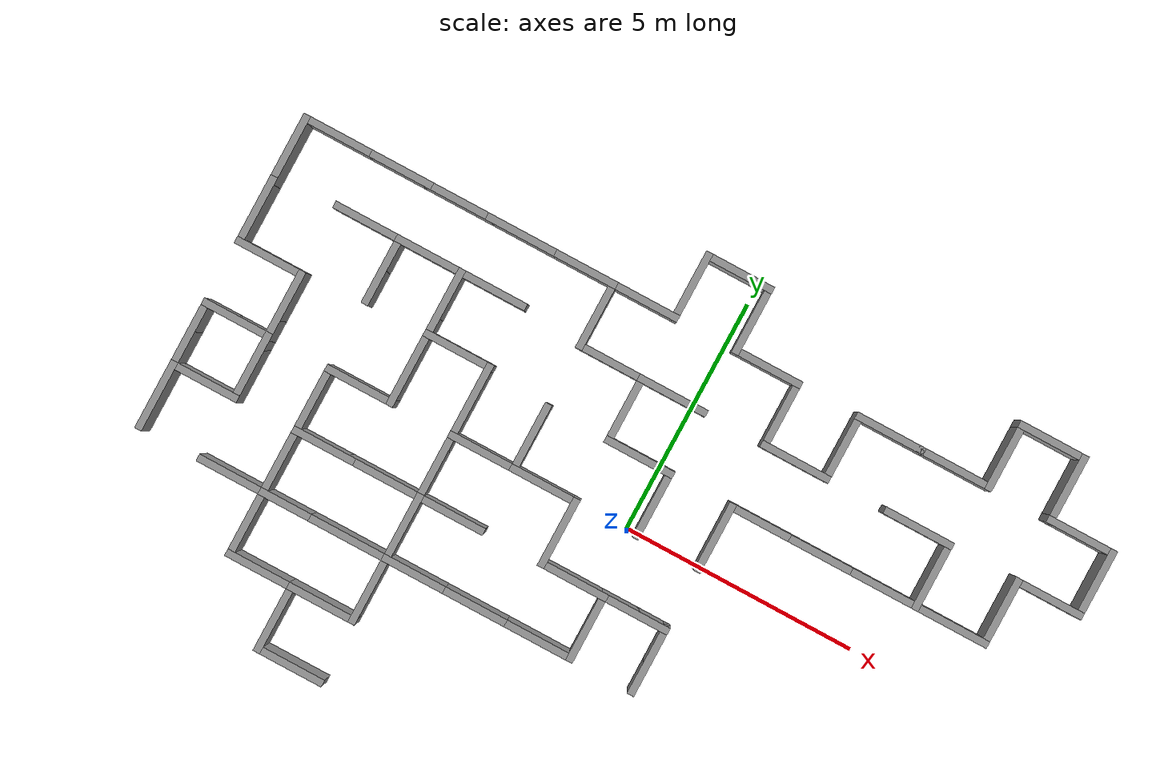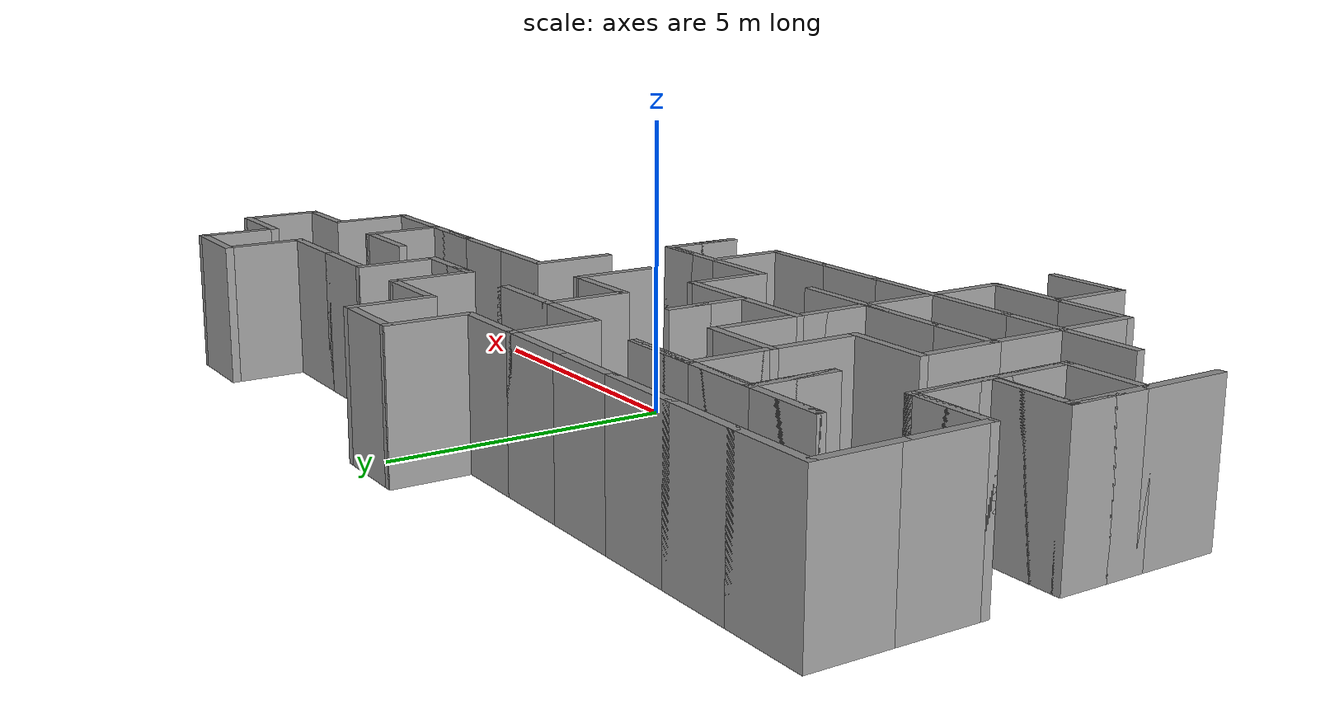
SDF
<sdf version="1.7">
 <model name="my_world">
  <pose>-0.384335 0.024184 0 0 -0 0</pose>
  <link name="Wall_100">
   <collision name="Wall_100_Collision">
    <geometry><box><size>1.5 0.15 2.5</size></box></geometry>
    <pose>0 0 1.25 0 -0 0</pose>
   </collision>
   <visual name="Wall_100_Visual">
    <pose>0 0 1.25 0 -0 0</pose>
    <geometry><box><size>1.5 0.15 2.5</size></box></geometry>
    <material>
     <script><uri>file://media/materials/scripts/gazebo.material</uri><name>Gazebo/Grey</name></script>
     <ambient>1 1 1 1</ambient>
    </material>
    <meta><layer>0</layer></meta>
   </visual>
   <pose>3.975 4.05 0 0 -0 0</pose>
  </link>
  <link name="Wall_102">
   <collision name="Wall_102_Collision">
    <geometry><box><size>1.5 0.15 2.5</size></box></geometry>
    <pose>0 0 1.25 0 -0 0</pose>
   </collision>
   <visual name="Wall_102_Visual">
    <pose>0 0 1.25 0 -0 0</pose>
    <geometry><box><size>1.5 0.15 2.5</size></box></geometry>
    <material>
     <script><uri>file://media/materials/scripts/gazebo.material</uri><name>Gazebo/Grey</name></script>
     <ambient>1 1 1 1</ambient>
    </material>
    <meta><layer>0</layer></meta>
   </visual>
   <pose>5.325 2.7 0 0 -0 0</pose>
  </link>
  <link name="Wall_103">
   <collision name="Wall_103_Collision">
    <geometry><box><size>1.5 0.15 2.5</size></box></geometry>
    <pose>0 0 1.25 0 -0 0</pose>
   </collision>
   <visual name="Wall_103_Visual">
    <pose>0 0 1.25 0 -0 0</pose>
    <geometry><box><size>1.5 0.15 2.5</size></box></geometry>
    <material>
     <script><uri>file://media/materials/scripts/gazebo.material</uri><name>Gazebo/Grey</name></script>
     <ambient>1 1 1 1</ambient>
    </material>
    <meta><layer>0</layer></meta>
   </visual>
   <pose>6 2.025 0 0 -0 -1.5708</pose>
  </link>
  <link name="Wall_104">
   <collision name="Wall_104_Collision">
    <geometry><box><size>1.5 0.15 2.5</size></box></geometry>
    <pose>0 0 1.25 0 -0 0</pose>
   </collision>
   <visual name="Wall_104_Visual">
    <pose>0 0 1.25 0 -0 0</pose>
    <geometry><box><size>1.5 0.15 2.5</size></box></geometry>
    <material>
     <script><uri>file://media/materials/scripts/gazebo.material</uri><name>Gazebo/Grey</name></script>
     <ambient>1 1 1 1</ambient>
    </material>
    <meta><layer>0</layer></meta>
   </visual>
   <pose>5.325 1.35 0 0 -0 3.14159</pose>
  </link>
  <link name="Wall_105">
   <collision name="Wall_105_Collision">
    <geometry><box><size>3 0.15 2.5</size></box></geometry>
    <pose>0 0 1.25 0 -0 0</pose>
   </collision>
   <visual name="Wall_105_Visual">
    <pose>0 0 1.25 0 -0 0</pose>
    <geometry><box><size>3 0.15 2.5</size></box></geometry>
    <material>
     <script><uri>file://media/materials/scripts/gazebo.material</uri><name>Gazebo/Grey</name></script>
     <ambient>1 1 1 1</ambient>
    </material>
    <meta><layer>0</layer></meta>
   </visual>
   <pose>6.075 1.35 0 0 -0 0</pose>
  </link>
  <link name="Wall_106">
   <collision name="Wall_106_Collision">
    <geometry><box><size>1.5 0.15 2.5</size></box></geometry>
    <pose>0 0 1.25 0 -0 0</pose>
   </collision>
   <visual name="Wall_106_Visual">
    <pose>0 0 1.25 0 -0 0</pose>
    <geometry><box><size>1.5 0.15 2.5</size></box></geometry>
    <material>
     <script><uri>file://media/materials/scripts/gazebo.material</uri><name>Gazebo/Grey</name></script>
     <ambient>1 1 1 1</ambient>
    </material>
    <meta><layer>0</layer></meta>
   </visual>
   <pose>7.5 2.025 0 0 -0 1.5708</pose>
  </link>
  <link name="Wall_107">
   <collision name="Wall_107_Collision">
    <geometry><box><size>1.5 0.15 2.5</size></box></geometry>
    <pose>0 0 1.25 0 -0 0</pose>
   </collision>
   <visual name="Wall_107_Visual">
    <pose>0 0 1.25 0 -0 0</pose>
    <geometry><box><size>1.5 0.15 2.5</size></box></geometry>
    <material>
     <script><uri>file://media/materials/scripts/gazebo.material</uri><name>Gazebo/Grey</name></script>
     <ambient>1 1 1 1</ambient>
    </material>
    <meta><layer>0</layer></meta>
   </visual>
   <pose>8.175 2.7 0 0 -0 0</pose>
  </link>
  <link name="Wall_108">
   <collision name="Wall_108_Collision">
    <geometry><box><size>1.5 0.15 2.5</size></box></geometry>
    <pose>0 0 1.25 0 -0 0</pose>
   </collision>
   <visual name="Wall_108_Visual">
    <pose>0 0 1.25 0 -0 0</pose>
    <geometry><box><size>1.5 0.15 2.5</size></box></geometry>
    <material>
     <script><uri>file://media/materials/scripts/gazebo.material</uri><name>Gazebo/Grey</name></script>
     <ambient>1 1 1 1</ambient>
    </material>
    <meta><layer>0</layer></meta>
   </visual>
   <pose>8.85 3.375 0 0 -0 1.5708</pose>
  </link>
  <link name="Wall_109">
   <collision name="Wall_109_Collision">
    <geometry><box><size>1.5 0.15 2.5</size></box></geometry>
    <pose>0 0 1.25 0 -0 0</pose>
   </collision>
   <visual name="Wall_109_Visual">
    <pose>0 0 1.25 0 -0 0</pose>
    <geometry><box><size>1.5 0.15 2.5</size></box></geometry>
    <material>
     <script><uri>file://media/materials/scripts/gazebo.material</uri><name>Gazebo/Grey</name></script>
     <ambient>1 1 1 1</ambient>
    </material>
    <meta><layer>0</layer></meta>
   </visual>
   <pose>8.175 4.05 0 0 -0 3.14159</pose>
  </link>
  <link name="Wall_110">
   <collision name="Wall_110_Collision">
    <geometry><box><size>1.5 0.15 2.5</size></box></geometry>
    <pose>0 0 1.25 0 -0 0</pose>
   </collision>
   <visual name="Wall_110_Visual">
    <pose>0 0 1.25 0 -0 0</pose>
    <geometry><box><size>1.5 0.15 2.5</size></box></geometry>
    <material>
     <script><uri>file://media/materials/scripts/gazebo.material</uri><name>Gazebo/Grey</name></script>
     <ambient>1 1 1 1</ambient>
    </material>
    <meta><layer>0</layer></meta>
   </visual>
   <pose>7.5 4.725 0 0 -0 1.5708</pose>
  </link>
  <link name="Wall_111">
   <collision name="Wall_111_Collision">
    <geometry><box><size>1.5 0.15 2.5</size></box></geometry>
    <pose>0 0 1.25 0 -0 0</pose>
   </collision>
   <visual name="Wall_111_Visual">
    <pose>0 0 1.25 0 -0 0</pose>
    <geometry><box><size>1.5 0.15 2.5</size></box></geometry>
    <material>
     <script><uri>file://media/materials/scripts/gazebo.material</uri><name>Gazebo/Grey</name></script>
     <ambient>1 1 1 1</ambient>
    </material>
    <meta><layer>0</layer></meta>
   </visual>
   <pose>6.825 5.4 0 0 -0 3.14159</pose>
  </link>
  <link name="Wall_112">
   <collision name="Wall_112_Collision">
    <geometry><box><size>1.5 0.15 2.5</size></box></geometry>
    <pose>0 0 1.25 0 -0 0</pose>
   </collision>
   <visual name="Wall_112_Visual">
    <pose>0 0 1.25 0 -0 0</pose>
    <geometry><box><size>1.5 0.15 2.5</size></box></geometry>
    <material>
     <script><uri>file://media/materials/scripts/gazebo.material</uri><name>Gazebo/Grey</name></script>
     <ambient>1 1 1 1</ambient>
    </material>
    <meta><layer>0</layer></meta>
   </visual>
   <pose>6.15 4.725 0 0 -0 -1.5708</pose>
  </link>
  <link name="Wall_114">
   <collision name="Wall_114_Collision">
    <geometry><box><size>1.5 0.15 2.5</size></box></geometry>
    <pose>0 0 1.25 0 -0 0</pose>
   </collision>
   <visual name="Wall_114_Visual">
    <pose>0 0 1.25 0 -0 0</pose>
    <geometry><box><size>1.5 0.15 2.5</size></box></geometry>
    <material>
     <script><uri>file://media/materials/scripts/gazebo.material</uri><name>Gazebo/Grey</name></script>
     <ambient>1 1 1 1</ambient>
    </material>
    <meta><layer>0</layer></meta>
   </visual>
   <pose>-0.75 -0.675 0 0 -0 -1.5708</pose>
  </link>
  <link name="Wall_115">
   <collision name="Wall_115_Collision">
    <geometry><box><size>1.5 0.15 2.5</size></box></geometry>
    <pose>0 0 1.25 0 -0 0</pose>
   </collision>
   <visual name="Wall_115_Visual">
    <pose>0 0 1.25 0 -0 0</pose>
    <geometry><box><size>1.5 0.15 2.5</size></box></geometry>
    <material>
     <script><uri>file://media/materials/scripts/gazebo.material</uri><name>Gazebo/Grey</name></script>
     <ambient>1 1 1 1</ambient>
    </material>
    <meta><layer>0</layer></meta>
   </visual>
   <pose>-0.075 -1.35 0 0 -0 0</pose>
  </link>
  <link name="Wall_116">
   <collision name="Wall_116_Collision">
    <geometry><box><size>1.5 0.15 2.5</size></box></geometry>
    <pose>0 0 1.25 0 -0 0</pose>
   </collision>
   <visual name="Wall_116_Visual">
    <pose>0 0 1.25 0 -0 0</pose>
    <geometry><box><size>1.5 0.15 2.5</size></box></geometry>
    <material>
     <script><uri>file://media/materials/scripts/gazebo.material</uri><name>Gazebo/Grey</name></script>
     <ambient>1 1 1 1</ambient>
    </material>
    <meta><layer>0</layer></meta>
   </visual>
   <pose>1.275 -1.35 0 0 -0 0</pose>
  </link>
  <link name="Wall_117">
   <collision name="Wall_117_Collision">
    <geometry><box><size>1.5 0.15 2.5</size></box></geometry>
    <pose>0 0 1.25 0 -0 0</pose>
   </collision>
   <visual name="Wall_117_Visual">
    <pose>0 0 1.25 0 -0 0</pose>
    <geometry><box><size>1.5 0.15 2.5</size></box></geometry>
    <material>
     <script><uri>file://media/materials/scripts/gazebo.material</uri><name>Gazebo/Grey</name></script>
     <ambient>1 1 1 1</ambient>
    </material>
    <meta><layer>0</layer></meta>
   </visual>
   <pose>1.95 -2.025 0 0 -0 -1.5708</pose>
  </link>
  <link name="Wall_118">
   <collision name="Wall_118_Collision">
    <geometry><box><size>1.5 0.15 2.5</size></box></geometry>
    <pose>0 0 1.25 0 -0 0</pose>
   </collision>
   <visual name="Wall_118_Visual">
    <pose>0 0 1.25 0 -0 0</pose>
    <geometry><box><size>1.5 0.15 2.5</size></box></geometry>
    <material>
     <script><uri>file://media/materials/scripts/gazebo.material</uri><name>Gazebo/Grey</name></script>
     <ambient>1 1 1 1</ambient>
    </material>
    <meta><layer>0</layer></meta>
   </visual>
   <pose>1.95 -2.025 0 0 -0 1.5708</pose>
  </link>
  <link name="Wall_119">
   <collision name="Wall_119_Collision">
    <geometry><box><size>1.5 0.15 2.5</size></box></geometry>
    <pose>0 0 1.25 0 -0 0</pose>
   </collision>
   <visual name="Wall_119_Visual">
    <pose>0 0 1.25 0 -0 0</pose>
    <geometry><box><size>1.5 0.15 2.5</size></box></geometry>
    <material>
     <script><uri>file://media/materials/scripts/gazebo.material</uri><name>Gazebo/Grey</name></script>
     <ambient>1 1 1 1</ambient>
    </material>
    <meta><layer>0</layer></meta>
   </visual>
   <pose>1.275 -1.35 0 0 -0 3.14159</pose>
  </link>
  <link name="Wall_120">
   <collision name="Wall_120_Collision">
    <geometry><box><size>1.5 0.15 2.5</size></box></geometry>
    <pose>0 0 1.25 0 -0 0</pose>
   </collision>
   <visual name="Wall_120_Visual">
    <pose>0 0 1.25 0 -0 0</pose>
    <geometry><box><size>1.5 0.15 2.5</size></box></geometry>
    <material>
     <script><uri>file://media/materials/scripts/gazebo.material</uri><name>Gazebo/Grey</name></script>
     <ambient>1 1 1 1</ambient>
    </material>
    <meta><layer>0</layer></meta>
   </visual>
   <pose>0.6 -2.025 0 0 -0 -1.5708</pose>
  </link>
  <link name="Wall_121">
   <collision name="Wall_121_Collision">
    <geometry><box><size>1.5 0.15 2.5</size></box></geometry>
    <pose>0 0 1.25 0 -0 0</pose>
   </collision>
   <visual name="Wall_121_Visual">
    <pose>0 0 1.25 0 -0 0</pose>
    <geometry><box><size>1.5 0.15 2.5</size></box></geometry>
    <material>
     <script><uri>file://media/materials/scripts/gazebo.material</uri><name>Gazebo/Grey</name></script>
     <ambient>1 1 1 1</ambient>
    </material>
    <meta><layer>0</layer></meta>
   </visual>
   <pose>-0.075 -2.7 0 0 -0 3.14159</pose>
  </link>
  <link name="Wall_122">
   <collision name="Wall_122_Collision">
    <geometry><box><size>1.5 0.15 2.5</size></box></geometry>
    <pose>0 0 1.25 0 -0 0</pose>
   </collision>
   <visual name="Wall_122_Visual">
    <pose>0 0 1.25 0 -0 0</pose>
    <geometry><box><size>1.5 0.15 2.5</size></box></geometry>
    <material>
     <script><uri>file://media/materials/scripts/gazebo.material</uri><name>Gazebo/Grey</name></script>
     <ambient>1 1 1 1</ambient>
    </material>
    <meta><layer>0</layer></meta>
   </visual>
   <pose>-1.425 -2.7 0 0 -0 3.14159</pose>
  </link>
  <link name="Wall_123">
   <collision name="Wall_123_Collision">
    <geometry><box><size>1.5 0.15 2.5</size></box></geometry>
    <pose>0 0 1.25 0 -0 0</pose>
   </collision>
   <visual name="Wall_123_Visual">
    <pose>0 0 1.25 0 -0 0</pose>
    <geometry><box><size>1.5 0.15 2.5</size></box></geometry>
    <material>
     <script><uri>file://media/materials/scripts/gazebo.material</uri><name>Gazebo/Grey</name></script>
     <ambient>1 1 1 1</ambient>
    </material>
    <meta><layer>0</layer></meta>
   </visual>
   <pose>-2.775 -2.7 0 0 -0 3.14159</pose>
  </link>
  <link name="Wall_124">
   <collision name="Wall_124_Collision">
    <geometry><box><size>1.75 0.15 2.5</size></box></geometry>
    <pose>0 0 1.25 0 -0 0</pose>
   </collision>
   <visual name="Wall_124_Visual">
    <pose>0 0 1.25 0 -0 0</pose>
    <geometry><box><size>1.75 0.15 2.5</size></box></geometry>
    <material>
     <script><uri>file://media/materials/scripts/gazebo.material</uri><name>Gazebo/Grey</name></script>
     <ambient>1 1 1 1</ambient>
    </material>
    <meta><layer>0</layer></meta>
   </visual>
   <pose>-4.25 -2.7 0 0 -0 3.14159</pose>
  </link>
  <link name="Wall_125">
   <collision name="Wall_125_Collision">
    <geometry><box><size>1.25 0.15 2.5</size></box></geometry>
    <pose>0 0 1.25 0 -0 0</pose>
   </collision>
   <visual name="Wall_125_Visual">
    <pose>0 0 1.25 0 -0 0</pose>
    <geometry><box><size>1.25 0.15 2.5</size></box></geometry>
    <material>
     <script><uri>file://media/materials/scripts/gazebo.material</uri><name>Gazebo/Grey</name></script>
     <ambient>1 1 1 1</ambient>
    </material>
    <meta><layer>0</layer></meta>
   </visual>
   <pose>-5.6 -2.7 0 0 -0 3.14159</pose>
  </link>
  <link name="Wall_126">
   <collision name="Wall_126_Collision">
    <geometry><box><size>1.5 0.15 2.5</size></box></geometry>
    <pose>0 0 1.25 0 -0 0</pose>
   </collision>
   <visual name="Wall_126_Visual">
    <pose>0 0 1.25 0 -0 0</pose>
    <geometry><box><size>1.5 0.15 2.5</size></box></geometry>
    <material>
     <script><uri>file://media/materials/scripts/gazebo.material</uri><name>Gazebo/Grey</name></script>
     <ambient>1 1 1 1</ambient>
    </material>
    <meta><layer>0</layer></meta>
   </visual>
   <pose>-6.825 -2.7 0 0 -0 3.14159</pose>
  </link>
  <link name="Wall_130">
   <collision name="Wall_130_Collision">
    <geometry><box><size>1.5 0.15 2.5</size></box></geometry>
    <pose>0 0 1.25 0 -0 0</pose>
   </collision>
   <visual name="Wall_130_Visual">
    <pose>0 0 1.25 0 -0 0</pose>
    <geometry><box><size>1.5 0.15 2.5</size></box></geometry>
    <material>
     <script><uri>file://media/materials/scripts/gazebo.material</uri><name>Gazebo/Grey</name></script>
     <ambient>1 1 1 1</ambient>
    </material>
    <meta><layer>0</layer></meta>
   </visual>
   <pose>-3.45 -2.025 0 0 -0 -1.5708</pose>
  </link>
  <link name="Wall_131">
   <collision name="Wall_131_Collision">
    <geometry><box><size>1.5 0.15 2.5</size></box></geometry>
    <pose>0 0 1.25 0 -0 0</pose>
   </collision>
   <visual name="Wall_131_Visual">
    <pose>0 0 1.25 0 -0 0</pose>
    <geometry><box><size>1.5 0.15 2.5</size></box></geometry>
    <material>
     <script><uri>file://media/materials/scripts/gazebo.material</uri><name>Gazebo/Grey</name></script>
     <ambient>1 1 1 1</ambient>
    </material>
    <meta><layer>0</layer></meta>
   </visual>
   <pose>-3.45 -3.375 0 0 -0 -1.5708</pose>
  </link>
  <link name="Wall_132">
   <collision name="Wall_132_Collision">
    <geometry><box><size>1.5 0.15 2.5</size></box></geometry>
    <pose>0 0 1.25 0 -0 0</pose>
   </collision>
   <visual name="Wall_132_Visual">
    <pose>0 0 1.25 0 -0 0</pose>
    <geometry><box><size>1.5 0.15 2.5</size></box></geometry>
    <material>
     <script><uri>file://media/materials/scripts/gazebo.material</uri><name>Gazebo/Grey</name></script>
     <ambient>1 1 1 1</ambient>
    </material>
    <meta><layer>0</layer></meta>
   </visual>
   <pose>-4.125 -4.05 0 0 -0 3.14159</pose>
  </link>
  <link name="Wall_133">
   <collision name="Wall_133_Collision">
    <geometry><box><size>1.5 0.15 2.5</size></box></geometry>
    <pose>0 0 1.25 0 -0 0</pose>
   </collision>
   <visual name="Wall_133_Visual">
    <pose>0 0 1.25 0 -0 0</pose>
    <geometry><box><size>1.5 0.15 2.5</size></box></geometry>
    <material>
     <script><uri>file://media/materials/scripts/gazebo.material</uri><name>Gazebo/Grey</name></script>
     <ambient>1 1 1 1</ambient>
    </material>
    <meta><layer>0</layer></meta>
   </visual>
   <pose>-4.8 -4.725 0 0 -0 -1.5708</pose>
  </link>
  <link name="Wall_134">
   <collision name="Wall_134_Collision">
    <geometry><box><size>1.5 0.15 2.5</size></box></geometry>
    <pose>0 0 1.25 0 -0 0</pose>
   </collision>
   <visual name="Wall_134_Visual">
    <pose>0 0 1.25 0 -0 0</pose>
    <geometry><box><size>1.5 0.15 2.5</size></box></geometry>
    <material>
     <script><uri>file://media/materials/scripts/gazebo.material</uri><name>Gazebo/Grey</name></script>
     <ambient>1 1 1 1</ambient>
    </material>
    <meta><layer>0</layer></meta>
   </visual>
   <pose>-4.125 -5.4 0 0 -0 0</pose>
  </link>
  <link name="Wall_140">
   <collision name="Wall_140_Collision">
    <geometry><box><size>1.5 0.15 2.5</size></box></geometry>
    <pose>0 0 1.25 0 -0 0</pose>
   </collision>
   <visual name="Wall_140_Visual">
    <pose>0 0 1.25 0 -0 0</pose>
    <geometry><box><size>1.5 0.15 2.5</size></box></geometry>
    <material>
     <script><uri>file://media/materials/scripts/gazebo.material</uri><name>Gazebo/Grey</name></script>
     <ambient>1 1 1 1</ambient>
    </material>
    <meta><layer>0</layer></meta>
   </visual>
   <pose>-5.475 -4.05 0 0 -0 3.14159</pose>
  </link>
  <link name="Wall_141">
   <collision name="Wall_141_Collision">
    <geometry><box><size>1.5 0.15 2.5</size></box></geometry>
    <pose>0 0 1.25 0 -0 0</pose>
   </collision>
   <visual name="Wall_141_Visual">
    <pose>0 0 1.25 0 -0 0</pose>
    <geometry><box><size>1.5 0.15 2.5</size></box></geometry>
    <material>
     <script><uri>file://media/materials/scripts/gazebo.material</uri><name>Gazebo/Grey</name></script>
     <ambient>1 1 1 1</ambient>
    </material>
    <meta><layer>0</layer></meta>
   </visual>
   <pose>-6.15 -3.375 0 0 -0 1.5708</pose>
  </link>
  <link name="Wall_142">
   <collision name="Wall_142_Collision">
    <geometry><box><size>1.5 0.15 2.5</size></box></geometry>
    <pose>0 0 1.25 0 -0 0</pose>
   </collision>
   <visual name="Wall_142_Visual">
    <pose>0 0 1.25 0 -0 0</pose>
    <geometry><box><size>1.5 0.15 2.5</size></box></geometry>
    <material>
     <script><uri>file://media/materials/scripts/gazebo.material</uri><name>Gazebo/Grey</name></script>
     <ambient>1 1 1 1</ambient>
    </material>
    <meta><layer>0</layer></meta>
   </visual>
   <pose>-6.825 -2.7 0 0 -0 3.14159</pose>
  </link>
  <link name="Wall_144">
   <collision name="Wall_144_Collision">
    <geometry><box><size>1.5 0.15 2.5</size></box></geometry>
    <pose>0 0 1.25 0 -0 0</pose>
   </collision>
   <visual name="Wall_144_Visual">
    <pose>0 0 1.25 0 -0 0</pose>
    <geometry><box><size>1.5 0.15 2.5</size></box></geometry>
    <material>
     <script><uri>file://media/materials/scripts/gazebo.material</uri><name>Gazebo/Grey</name></script>
     <ambient>1 1 1 1</ambient>
    </material>
    <meta><layer>0</layer></meta>
   </visual>
   <pose>-8.85 -2.025 0 0 -0 1.5708</pose>
  </link>
  <link name="Wall_145">
   <collision name="Wall_145_Collision">
    <geometry><box><size>1.5 0.15 2.5</size></box></geometry>
    <pose>0 0 1.25 0 -0 0</pose>
   </collision>
   <visual name="Wall_145_Visual">
    <pose>0 0 1.25 0 -0 0</pose>
    <geometry><box><size>1.5 0.15 2.5</size></box></geometry>
    <material>
     <script><uri>file://media/materials/scripts/gazebo.material</uri><name>Gazebo/Grey</name></script>
     <ambient>1 1 1 1</ambient>
    </material>
    <meta><layer>0</layer></meta>
   </visual>
   <pose>-8.175 -1.35 0 0 -0 0</pose>
  </link>
  <link name="Wall_147">
   <collision name="Wall_147_Collision">
    <geometry><box><size>1.35 0.15 2.5</size></box></geometry>
    <pose>0 0 1.25 0 -0 0</pose>
   </collision>
   <visual name="Wall_147_Visual">
    <pose>0 0 1.25 0 -0 0</pose>
    <geometry><box><size>1.35 0.15 2.5</size></box></geometry>
    <material>
     <script><uri>file://media/materials/scripts/gazebo.material</uri><name>Gazebo/Grey</name></script>
     <ambient>1 1 1 1</ambient>
    </material>
    <meta><layer>0</layer></meta>
   </visual>
   <pose>-5.55 -1.35 0 0 -0 3.14159</pose>
  </link>
  <link name="Wall_148">
   <collision name="Wall_148_Collision">
    <geometry><box><size>1.5 0.15 2.5</size></box></geometry>
    <pose>0 0 1.25 0 -0 0</pose>
   </collision>
   <visual name="Wall_148_Visual">
    <pose>0 0 1.25 0 -0 0</pose>
    <geometry><box><size>1.5 0.15 2.5</size></box></geometry>
    <material>
     <script><uri>file://media/materials/scripts/gazebo.material</uri><name>Gazebo/Grey</name></script>
     <ambient>1 1 1 1</ambient>
    </material>
    <meta><layer>0</layer></meta>
   </visual>
   <pose>-6.15 -2.025 0 0 -0 -1.5708</pose>
  </link>
  <link name="Wall_151">
   <collision name="Wall_151_Collision">
    <geometry><box><size>1.5 0.15 2.5</size></box></geometry>
    <pose>0 0 1.25 0 -0 0</pose>
   </collision>
   <visual name="Wall_151_Visual">
    <pose>0 0 1.25 0 -0 0</pose>
    <geometry><box><size>1.5 0.15 2.5</size></box></geometry>
    <material>
     <script><uri>file://media/materials/scripts/gazebo.material</uri><name>Gazebo/Grey</name></script>
     <ambient>1 1 1 1</ambient>
    </material>
    <meta><layer>0</layer></meta>
   </visual>
   <pose>-4.125 4.05 0 0 -0 0</pose>
  </link>
  <link name="Wall_153">
   <collision name="Wall_153_Collision">
    <geometry><box><size>1.5 0.15 2.5</size></box></geometry>
    <pose>0 0 1.25 0 -0 0</pose>
   </collision>
   <visual name="Wall_153_Visual">
    <pose>0 0 1.25 0 -0 0</pose>
    <geometry><box><size>1.5 0.15 2.5</size></box></geometry>
    <material>
     <script><uri>file://media/materials/scripts/gazebo.material</uri><name>Gazebo/Grey</name></script>
     <ambient>1 1 1 1</ambient>
    </material>
    <meta><layer>0</layer></meta>
   </visual>
   <pose>-0.075 2.7 0 0 -0 0</pose>
  </link>
  <link name="Wall_155">
   <collision name="Wall_155_Collision">
    <geometry><box><size>1.5 0.15 2.5</size></box></geometry>
    <pose>0 0 1.25 0 -0 0</pose>
   </collision>
   <visual name="Wall_155_Visual">
    <pose>0 0 1.25 0 -0 0</pose>
    <geometry><box><size>1.5 0.15 2.5</size></box></geometry>
    <material>
     <script><uri>file://media/materials/scripts/gazebo.material</uri><name>Gazebo/Grey</name></script>
     <ambient>1 1 1 1</ambient>
    </material>
    <meta><layer>0</layer></meta>
   </visual>
   <pose>-0.075 1.35 0 0 -0 0</pose>
  </link>
  <link name="Wall_156">
   <collision name="Wall_156_Collision">
    <geometry><box><size>1.5 0.15 2.5</size></box></geometry>
    <pose>0 0 1.25 0 -0 0</pose>
   </collision>
   <visual name="Wall_156_Visual">
    <pose>0 0 1.25 0 -0 0</pose>
    <geometry><box><size>1.5 0.15 2.5</size></box></geometry>
    <material>
     <script><uri>file://media/materials/scripts/gazebo.material</uri><name>Gazebo/Grey</name></script>
     <ambient>1 1 1 1</ambient>
    </material>
    <meta><layer>0</layer></meta>
   </visual>
   <pose>0.6 0.675 0 0 -0 -1.5708</pose>
  </link>
  <link name="Wall_158">
   <collision name="Wall_158_Collision">
    <geometry><box><size>1.5 0.15 2.5</size></box></geometry>
    <pose>0 0 1.25 0 -0 0</pose>
   </collision>
   <visual name="Wall_158_Visual">
    <pose>0 0 1.25 0 -0 0</pose>
    <geometry><box><size>1.5 0.15 2.5</size></box></geometry>
    <material>
     <script><uri>file://media/materials/scripts/gazebo.material</uri><name>Gazebo/Grey</name></script>
     <ambient>1 1 1 1</ambient>
    </material>
    <meta><layer>0</layer></meta>
   </visual>
   <pose>3.975 1.35 0 0 -0 0</pose>
  </link>
  <link name="Wall_160">
   <collision name="Wall_160_Collision">
    <geometry><box><size>0.15 0.15 2.5</size></box></geometry>
    <pose>0 0 1.25 0 -0 0</pose>
   </collision>
   <visual name="Wall_160_Visual">
    <pose>0 0 1.25 0 -0 0</pose>
    <geometry><box><size>0.15 0.15 2.5</size></box></geometry>
    <material>
     <script><uri>file://media/materials/scripts/gazebo.material</uri><name>Gazebo/Grey</name></script>
     <ambient>1 1 1 1</ambient>
    </material>
    <meta><layer>0</layer></meta>
   </visual>
   <pose>4.65 4.05 0 0 -0 0</pose>
  </link>
  <link name="Wall_161">
   <collision name="Wall_161_Collision">
    <geometry><box><size>1.65 0.15 2.5</size></box></geometry>
    <pose>0 0 1.25 0 -0 0</pose>
   </collision>
   <visual name="Wall_161_Visual">
    <pose>0 0 1.25 0 -0 0</pose>
    <geometry><box><size>1.65 0.15 2.5</size></box></geometry>
    <material>
     <script><uri>file://media/materials/scripts/gazebo.material</uri><name>Gazebo/Grey</name></script>
     <ambient>1 1 1 1</ambient>
    </material>
    <meta><layer>0</layer></meta>
   </visual>
   <pose>5.4 4.05 0 0 -0 0</pose>
  </link>
  <link name="Wall_39">
   <collision name="Wall_39_Collision">
    <geometry><box><size>1.5 0.15 2.5</size></box></geometry>
    <pose>0 0 1.25 0 -0 0</pose>
   </collision>
   <visual name="Wall_39_Visual">
    <pose>0 0 1.25 0 -0 0</pose>
    <geometry><box><size>1.5 0.15 2.5</size></box></geometry>
    <material>
     <script><uri>file://media/materials/scripts/gazebo.material</uri><name>Gazebo/Grey</name></script>
     <ambient>1 1 1 1</ambient>
    </material>
    <meta><layer>0</layer></meta>
   </visual>
   <pose>-2.775 4.05 0 0 -0 0</pose>
  </link>
  <link name="Wall_40">
   <collision name="Wall_40_Collision">
    <geometry><box><size>1.5 0.15 2.5</size></box></geometry>
    <pose>0 0 1.25 0 -0 0</pose>
   </collision>
   <visual name="Wall_40_Visual">
    <pose>0 0 1.25 0 -0 0</pose>
    <geometry><box><size>1.5 0.15 2.5</size></box></geometry>
    <material>
     <script><uri>file://media/materials/scripts/gazebo.material</uri><name>Gazebo/Grey</name></script>
     <ambient>1 1 1 1</ambient>
    </material>
    <meta><layer>0</layer></meta>
   </visual>
   <pose>-2.1 3.375 0 0 -0 -1.5708</pose>
  </link>
  <link name="Wall_41">
   <collision name="Wall_41_Collision">
    <geometry><box><size>1.5 0.15 2.5</size></box></geometry>
    <pose>0 0 1.25 0 -0 0</pose>
   </collision>
   <visual name="Wall_41_Visual">
    <pose>0 0 1.25 0 -0 0</pose>
    <geometry><box><size>1.5 0.15 2.5</size></box></geometry>
    <material>
     <script><uri>file://media/materials/scripts/gazebo.material</uri><name>Gazebo/Grey</name></script>
     <ambient>1 1 1 1</ambient>
    </material>
    <meta><layer>0</layer></meta>
   </visual>
   <pose>-1.425 2.7 0 0 -0 0</pose>
  </link>
  <link name="Wall_43">
   <collision name="Wall_43_Collision">
    <geometry><box><size>1.5 0.15 2.5</size></box></geometry>
    <pose>0 0 1.25 0 -0 0</pose>
   </collision>
   <visual name="Wall_43_Visual">
    <pose>0 0 1.25 0 -0 0</pose>
    <geometry><box><size>1.5 0.15 2.5</size></box></geometry>
    <material>
     <script><uri>file://media/materials/scripts/gazebo.material</uri><name>Gazebo/Grey</name></script>
     <ambient>1 1 1 1</ambient>
    </material>
    <meta><layer>0</layer></meta>
   </visual>
   <pose>-0.75 2.025 0 0 -0 -1.5708</pose>
  </link>
  <link name="Wall_47">
   <collision name="Wall_47_Collision">
    <geometry><box><size>1.5 0.15 2.5</size></box></geometry>
    <pose>0 0 1.25 0 -0 0</pose>
   </collision>
   <visual name="Wall_47_Visual">
    <pose>0 0 1.25 0 -0 0</pose>
    <geometry><box><size>1.5 0.15 2.5</size></box></geometry>
    <material>
     <script><uri>file://media/materials/scripts/gazebo.material</uri><name>Gazebo/Grey</name></script>
     <ambient>1 1 1 1</ambient>
    </material>
    <meta><layer>0</layer></meta>
   </visual>
   <pose>1.95 0.675 0 0 -0 1.5708</pose>
  </link>
  <link name="Wall_48">
   <collision name="Wall_48_Collision">
    <geometry><box><size>1.5 0.15 2.5</size></box></geometry>
    <pose>0 0 1.25 0 -0 0</pose>
   </collision>
   <visual name="Wall_48_Visual">
    <pose>0 0 1.25 0 -0 0</pose>
    <geometry><box><size>1.5 0.15 2.5</size></box></geometry>
    <material>
     <script><uri>file://media/materials/scripts/gazebo.material</uri><name>Gazebo/Grey</name></script>
     <ambient>1 1 1 1</ambient>
    </material>
    <meta><layer>0</layer></meta>
   </visual>
   <pose>2.625 1.35 0 0 -0 0</pose>
  </link>
  <link name="Wall_50">
   <collision name="Wall_50_Collision">
    <geometry><box><size>1.5 0.15 2.5</size></box></geometry>
    <pose>0 0 1.25 0 -0 0</pose>
   </collision>
   <visual name="Wall_50_Visual">
    <pose>0 0 1.25 0 -0 0</pose>
    <geometry><box><size>1.5 0.15 2.5</size></box></geometry>
    <material>
     <script><uri>file://media/materials/scripts/gazebo.material</uri><name>Gazebo/Grey</name></script>
     <ambient>1 1 1 1</ambient>
    </material>
    <meta><layer>0</layer></meta>
   </visual>
   <pose>2.625 2.7 0 0 -0 3.14159</pose>
  </link>
  <link name="Wall_54">
   <collision name="Wall_54_Collision">
    <geometry><box><size>1.5 0.15 2.5</size></box></geometry>
    <pose>0 0 1.25 0 -0 0</pose>
   </collision>
   <visual name="Wall_54_Visual">
    <pose>0 0 1.25 0 -0 0</pose>
    <geometry><box><size>1.5 0.15 2.5</size></box></geometry>
    <material>
     <script><uri>file://media/materials/scripts/gazebo.material</uri><name>Gazebo/Grey</name></script>
     <ambient>1 1 1 1</ambient>
    </material>
    <meta><layer>0</layer></meta>
   </visual>
   <pose>-1.425 -0 0 0 -0 3.14159</pose>
  </link>
  <link name="Wall_55">
   <collision name="Wall_55_Collision">
    <geometry><box><size>1.5 0.15 2.5</size></box></geometry>
    <pose>0 0 1.25 0 -0 0</pose>
   </collision>
   <visual name="Wall_55_Visual">
    <pose>0 0 1.25 0 -0 0</pose>
    <geometry><box><size>1.5 0.15 2.5</size></box></geometry>
    <material>
     <script><uri>file://media/materials/scripts/gazebo.material</uri><name>Gazebo/Grey</name></script>
     <ambient>1 1 1 1</ambient>
    </material>
    <meta><layer>0</layer></meta>
   </visual>
   <pose>-2.1 0.675 0 0 -0 1.5708</pose>
  </link>
  <link name="Wall_56">
   <collision name="Wall_56_Collision">
    <geometry><box><size>1.5 0.15 2.5</size></box></geometry>
    <pose>0 0 1.25 0 -0 0</pose>
   </collision>
   <visual name="Wall_56_Visual">
    <pose>0 0 1.25 0 -0 0</pose>
    <geometry><box><size>1.5 0.15 2.5</size></box></geometry>
    <material>
     <script><uri>file://media/materials/scripts/gazebo.material</uri><name>Gazebo/Grey</name></script>
     <ambient>1 1 1 1</ambient>
    </material>
    <meta><layer>0</layer></meta>
   </visual>
   <pose>-2.1 0.675 0 0 -0 -1.5708</pose>
  </link>
  <link name="Wall_57">
   <collision name="Wall_57_Collision">
    <geometry><box><size>1.5 0.15 2.5</size></box></geometry>
    <pose>0 0 1.25 0 -0 0</pose>
   </collision>
   <visual name="Wall_57_Visual">
    <pose>0 0 1.25 0 -0 0</pose>
    <geometry><box><size>1.5 0.15 2.5</size></box></geometry>
    <material>
     <script><uri>file://media/materials/scripts/gazebo.material</uri><name>Gazebo/Grey</name></script>
     <ambient>1 1 1 1</ambient>
    </material>
    <meta><layer>0</layer></meta>
   </visual>
   <pose>-2.775 -0 0 0 -0 3.14159</pose>
  </link>
  <link name="Wall_58">
   <collision name="Wall_58_Collision">
    <geometry><box><size>1.5 0.15 2.5</size></box></geometry>
    <pose>0 0 1.25 0 -0 0</pose>
   </collision>
   <visual name="Wall_58_Visual">
    <pose>0 0 1.25 0 -0 0</pose>
    <geometry><box><size>1.5 0.15 2.5</size></box></geometry>
    <material>
     <script><uri>file://media/materials/scripts/gazebo.material</uri><name>Gazebo/Grey</name></script>
     <ambient>1 1 1 1</ambient>
    </material>
    <meta><layer>0</layer></meta>
   </visual>
   <pose>-3.45 -0.675 0 0 -0 -1.5708</pose>
  </link>
  <link name="Wall_59">
   <collision name="Wall_59_Collision">
    <geometry><box><size>1.5 0.15 2.5</size></box></geometry>
    <pose>0 0 1.25 0 -0 0</pose>
   </collision>
   <visual name="Wall_59_Visual">
    <pose>0 0 1.25 0 -0 0</pose>
    <geometry><box><size>1.5 0.15 2.5</size></box></geometry>
    <material>
     <script><uri>file://media/materials/scripts/gazebo.material</uri><name>Gazebo/Grey</name></script>
     <ambient>1 1 1 1</ambient>
    </material>
    <meta><layer>0</layer></meta>
   </visual>
   <pose>-2.775 -1.35 0 0 -0 0</pose>
  </link>
  <link name="Wall_60">
   <collision name="Wall_60_Collision">
    <geometry><box><size>3 0.15 2.5</size></box></geometry>
    <pose>0 0 1.25 0 -0 0</pose>
   </collision>
   <visual name="Wall_60_Visual">
    <pose>0 0 1.25 0 -0 0</pose>
    <geometry><box><size>3 0.15 2.5</size></box></geometry>
    <material>
     <script><uri>file://media/materials/scripts/gazebo.material</uri><name>Gazebo/Grey</name></script>
     <ambient>1 1 1 1</ambient>
    </material>
    <meta><layer>0</layer></meta>
   </visual>
   <pose>-3.525 -1.35 0 0 -0 3.14159</pose>
  </link>
  <link name="Wall_61">
   <collision name="Wall_61_Collision">
    <geometry><box><size>1.65 0.15 2.5</size></box></geometry>
    <pose>0 0 1.25 0 -0 0</pose>
   </collision>
   <visual name="Wall_61_Visual">
    <pose>0 0 1.25 0 -0 0</pose>
    <geometry><box><size>1.65 0.15 2.5</size></box></geometry>
    <material>
     <script><uri>file://media/materials/scripts/gazebo.material</uri><name>Gazebo/Grey</name></script>
     <ambient>1 1 1 1</ambient>
    </material>
    <meta><layer>0</layer></meta>
   </visual>
   <pose>-4.2 -1.35 0 0 -0 0</pose>
  </link>
  <link name="Wall_62">
   <collision name="Wall_62_Collision">
    <geometry><box><size>3 0.15 2.5</size></box></geometry>
    <pose>0 0 1.25 0 -0 0</pose>
   </collision>
   <visual name="Wall_62_Visual">
    <pose>0 0 1.25 0 -0 0</pose>
    <geometry><box><size>3 0.15 2.5</size></box></geometry>
    <material>
     <script><uri>file://media/materials/scripts/gazebo.material</uri><name>Gazebo/Grey</name></script>
     <ambient>1 1 1 1</ambient>
    </material>
    <meta><layer>0</layer></meta>
   </visual>
   <pose>-3.45 0.075 0 0 -0 1.5708</pose>
  </link>
  <link name="Wall_63">
   <collision name="Wall_63_Collision">
    <geometry><box><size>1.5 0.15 2.5</size></box></geometry>
    <pose>0 0 1.25 0 -0 0</pose>
   </collision>
   <visual name="Wall_63_Visual">
    <pose>0 0 1.25 0 -0 0</pose>
    <geometry><box><size>1.5 0.15 2.5</size></box></geometry>
    <material>
     <script><uri>file://media/materials/scripts/gazebo.material</uri><name>Gazebo/Grey</name></script>
     <ambient>1 1 1 1</ambient>
    </material>
    <meta><layer>0</layer></meta>
   </visual>
   <pose>-4.125 1.5 0 0 -0 3.14159</pose>
  </link>
  <link name="Wall_64">
   <collision name="Wall_64_Collision">
    <geometry><box><size>1.5 0.15 2.5</size></box></geometry>
    <pose>0 0 1.25 0 -0 0</pose>
   </collision>
   <visual name="Wall_64_Visual">
    <pose>0 0 1.25 0 -0 0</pose>
    <geometry><box><size>1.5 0.15 2.5</size></box></geometry>
    <material>
     <script><uri>file://media/materials/scripts/gazebo.material</uri><name>Gazebo/Grey</name></script>
     <ambient>1 1 1 1</ambient>
    </material>
    <meta><layer>0</layer></meta>
   </visual>
   <pose>-4.8 2.175 0 0 -0 1.5708</pose>
  </link>
  <link name="Wall_65">
   <collision name="Wall_65_Collision">
    <geometry><box><size>1.5 0.15 2.5</size></box></geometry>
    <pose>0 0 1.25 0 -0 0</pose>
   </collision>
   <visual name="Wall_65_Visual">
    <pose>0 0 1.25 0 -0 0</pose>
    <geometry><box><size>1.5 0.15 2.5</size></box></geometry>
    <material>
     <script><uri>file://media/materials/scripts/gazebo.material</uri><name>Gazebo/Grey</name></script>
     <ambient>1 1 1 1</ambient>
    </material>
    <meta><layer>0</layer></meta>
   </visual>
   <pose>-5.475 2.85 0 0 -0 3.14159</pose>
  </link>
  <link name="Wall_66">
   <collision name="Wall_66_Collision">
    <geometry><box><size>1.5 0.15 2.5</size></box></geometry>
    <pose>0 0 1.25 0 -0 0</pose>
   </collision>
   <visual name="Wall_66_Visual">
    <pose>0 0 1.25 0 -0 0</pose>
    <geometry><box><size>1.5 0.15 2.5</size></box></geometry>
    <material>
     <script><uri>file://media/materials/scripts/gazebo.material</uri><name>Gazebo/Grey</name></script>
     <ambient>1 1 1 1</ambient>
    </material>
    <meta><layer>0</layer></meta>
   </visual>
   <pose>-6.15 2.175 0 0 -0 -1.5708</pose>
  </link>
  <link name="Wall_67">
   <collision name="Wall_67_Collision">
    <geometry><box><size>1.5 0.15 2.5</size></box></geometry>
    <pose>0 0 1.25 0 -0 0</pose>
   </collision>
   <visual name="Wall_67_Visual">
    <pose>0 0 1.25 0 -0 0</pose>
    <geometry><box><size>1.5 0.15 2.5</size></box></geometry>
    <material>
     <script><uri>file://media/materials/scripts/gazebo.material</uri><name>Gazebo/Grey</name></script>
     <ambient>1 1 1 1</ambient>
    </material>
    <meta><layer>0</layer></meta>
   </visual>
   <pose>-6.15 2.175 0 0 -0 1.5708</pose>
  </link>
  <link name="Wall_68">
   <collision name="Wall_68_Collision">
    <geometry><box><size>1.5 0.15 2.5</size></box></geometry>
    <pose>0 0 1.25 0 -0 0</pose>
   </collision>
   <visual name="Wall_68_Visual">
    <pose>0 0 1.25 0 -0 0</pose>
    <geometry><box><size>1.5 0.15 2.5</size></box></geometry>
    <material>
     <script><uri>file://media/materials/scripts/gazebo.material</uri><name>Gazebo/Grey</name></script>
     <ambient>1 1 1 1</ambient>
    </material>
    <meta><layer>0</layer></meta>
   </visual>
   <pose>-6.825 2.85 0 0 -0 3.14159</pose>
  </link>
  <link name="Wall_69">
   <collision name="Wall_69_Collision">
    <geometry><box><size>2.85 0.15 2.5</size></box></geometry>
    <pose>0 0 1.25 0 -0 0</pose>
   </collision>
   <visual name="Wall_69_Visual">
    <pose>0 0 1.25 0 -0 0</pose>
    <geometry><box><size>2.85 0.15 2.5</size></box></geometry>
    <material>
     <script><uri>file://media/materials/scripts/gazebo.material</uri><name>Gazebo/Grey</name></script>
     <ambient>1 1 1 1</ambient>
    </material>
    <meta><layer>0</layer></meta>
   </visual>
   <pose>-6.15 2.85 0 0 -0 0</pose>
  </link>
  <link name="Wall_70">
   <collision name="Wall_70_Collision">
    <geometry><box><size>1.5 0.15 2.5</size></box></geometry>
    <pose>0 0 1.25 0 -0 0</pose>
   </collision>
   <visual name="Wall_70_Visual">
    <pose>0 0 1.25 0 -0 0</pose>
    <geometry><box><size>1.5 0.15 2.5</size></box></geometry>
    <material>
     <script><uri>file://media/materials/scripts/gazebo.material</uri><name>Gazebo/Grey</name></script>
     <ambient>1 1 1 1</ambient>
    </material>
    <meta><layer>0</layer></meta>
   </visual>
   <pose>-4.125 2.85 0 0 -0 0</pose>
  </link>
  <link name="Wall_71">
   <collision name="Wall_71_Collision">
    <geometry><box><size>1.5 0.15 2.5</size></box></geometry>
    <pose>0 0 1.25 0 -0 0</pose>
   </collision>
   <visual name="Wall_71_Visual">
    <pose>0 0 1.25 0 -0 0</pose>
    <geometry><box><size>1.5 0.15 2.5</size></box></geometry>
    <material>
     <script><uri>file://media/materials/scripts/gazebo.material</uri><name>Gazebo/Grey</name></script>
     <ambient>1 1 1 1</ambient>
    </material>
    <meta><layer>0</layer></meta>
   </visual>
   <pose>-4.125 2.85 0 0 -0 3.14159</pose>
  </link>
  <link name="Wall_72">
   <collision name="Wall_72_Collision">
    <geometry><box><size>3 0.15 2.5</size></box></geometry>
    <pose>0 0 1.25 0 -0 0</pose>
   </collision>
   <visual name="Wall_72_Visual">
    <pose>0 0 1.25 0 -0 0</pose>
    <geometry><box><size>3 0.15 2.5</size></box></geometry>
    <material>
     <script><uri>file://media/materials/scripts/gazebo.material</uri><name>Gazebo/Grey</name></script>
     <ambient>1 1 1 1</ambient>
    </material>
    <meta><layer>0</layer></meta>
   </visual>
   <pose>-4.8 1.425 0 0 -0 -1.5708</pose>
  </link>
  <link name="Wall_73">
   <collision name="Wall_73_Collision">
    <geometry><box><size>1.5 0.15 2.5</size></box></geometry>
    <pose>0 0 1.25 0 -0 0</pose>
   </collision>
   <visual name="Wall_73_Visual">
    <pose>0 0 1.25 0 -0 0</pose>
    <geometry><box><size>1.5 0.15 2.5</size></box></geometry>
    <material>
     <script><uri>file://media/materials/scripts/gazebo.material</uri><name>Gazebo/Grey</name></script>
     <ambient>1 1 1 1</ambient>
    </material>
    <meta><layer>0</layer></meta>
   </visual>
   <pose>-5.475 -0 0 0 -0 3.14159</pose>
  </link>
  <link name="Wall_74">
   <collision name="Wall_74_Collision">
    <geometry><box><size>1.5 0.15 2.5</size></box></geometry>
    <pose>0 0 1.25 0 -0 0</pose>
   </collision>
   <visual name="Wall_74_Visual">
    <pose>0 0 1.25 0 -0 0</pose>
    <geometry><box><size>1.5 0.15 2.5</size></box></geometry>
    <material>
     <script><uri>file://media/materials/scripts/gazebo.material</uri><name>Gazebo/Grey</name></script>
     <ambient>1 1 1 1</ambient>
    </material>
    <meta><layer>0</layer></meta>
   </visual>
   <pose>-6.15 -0.675 0 0 -0 -1.5708</pose>
  </link>
  <link name="Wall_76">
   <collision name="Wall_76_Collision">
    <geometry><box><size>1.5 0.15 2.5</size></box></geometry>
    <pose>0 0 1.25 0 -0 0</pose>
   </collision>
   <visual name="Wall_76_Visual">
    <pose>0 0 1.25 0 -0 0</pose>
    <geometry><box><size>1.5 0.15 2.5</size></box></geometry>
    <material>
     <script><uri>file://media/materials/scripts/gazebo.material</uri><name>Gazebo/Grey</name></script>
     <ambient>1 1 1 1</ambient>
    </material>
    <meta><layer>0</layer></meta>
   </visual>
   <pose>-7.5 -0.675 0 0 -0 1.5708</pose>
  </link>
  <link name="Wall_77">
   <collision name="Wall_77_Collision">
    <geometry><box><size>1.5 0.15 2.5</size></box></geometry>
    <pose>0 0 1.25 0 -0 0</pose>
   </collision>
   <visual name="Wall_77_Visual">
    <pose>0 0 1.25 0 -0 0</pose>
    <geometry><box><size>1.5 0.15 2.5</size></box></geometry>
    <material>
     <script><uri>file://media/materials/scripts/gazebo.material</uri><name>Gazebo/Grey</name></script>
     <ambient>1 1 1 1</ambient>
    </material>
    <meta><layer>0</layer></meta>
   </visual>
   <pose>-8.175 -0 0 0 -0 3.14159</pose>
  </link>
  <link name="Wall_78">
   <collision name="Wall_78_Collision">
    <geometry><box><size>1.5 0.15 2.5</size></box></geometry>
    <pose>0 0 1.25 0 -0 0</pose>
   </collision>
   <visual name="Wall_78_Visual">
    <pose>0 0 1.25 0 -0 0</pose>
    <geometry><box><size>1.5 0.15 2.5</size></box></geometry>
    <material>
     <script><uri>file://media/materials/scripts/gazebo.material</uri><name>Gazebo/Grey</name></script>
     <ambient>1 1 1 1</ambient>
    </material>
    <meta><layer>0</layer></meta>
   </visual>
   <pose>-8.85 -0.675 0 0 -0 -1.5708</pose>
  </link>
  <link name="Wall_79">
   <collision name="Wall_79_Collision">
    <geometry><box><size>1.5 0.15 2.5</size></box></geometry>
    <pose>0 0 1.25 0 -0 0</pose>
   </collision>
   <visual name="Wall_79_Visual">
    <pose>0 0 1.25 0 -0 0</pose>
    <geometry><box><size>1.5 0.15 2.5</size></box></geometry>
    <material>
     <script><uri>file://media/materials/scripts/gazebo.material</uri><name>Gazebo/Grey</name></script>
     <ambient>1 1 1 1</ambient>
    </material>
    <meta><layer>0</layer></meta>
   </visual>
   <pose>-8.85 -0.675 0 0 -0 1.5708</pose>
  </link>
  <link name="Wall_80">
   <collision name="Wall_80_Collision">
    <geometry><box><size>1.5 0.15 2.5</size></box></geometry>
    <pose>0 0 1.25 0 -0 0</pose>
   </collision>
   <visual name="Wall_80_Visual">
    <pose>0 0 1.25 0 -0 0</pose>
    <geometry><box><size>1.5 0.15 2.5</size></box></geometry>
    <material>
     <script><uri>file://media/materials/scripts/gazebo.material</uri><name>Gazebo/Grey</name></script>
     <ambient>1 1 1 1</ambient>
    </material>
    <meta><layer>0</layer></meta>
   </visual>
   <pose>-8.175 -0 0 0 -0 0</pose>
  </link>
  <link name="Wall_81">
   <collision name="Wall_81_Collision">
    <geometry><box><size>1.5 0.15 2.5</size></box></geometry>
    <pose>0 0 1.25 0 -0 0</pose>
   </collision>
   <visual name="Wall_81_Visual">
    <pose>0 0 1.25 0 -0 0</pose>
    <geometry><box><size>1.5 0.15 2.5</size></box></geometry>
    <material>
     <script><uri>file://media/materials/scripts/gazebo.material</uri><name>Gazebo/Grey</name></script>
     <ambient>1 1 1 1</ambient>
    </material>
    <meta><layer>0</layer></meta>
   </visual>
   <pose>-7.5 0.675 0 0 -0 1.5708</pose>
  </link>
  <link name="Wall_82">
   <collision name="Wall_82_Collision">
    <geometry><box><size>1.5 0.15 2.5</size></box></geometry>
    <pose>0 0 1.25 0 -0 0</pose>
   </collision>
   <visual name="Wall_82_Visual">
    <pose>0 0 1.25 0 -0 0</pose>
    <geometry><box><size>1.5 0.15 2.5</size></box></geometry>
    <material>
     <script><uri>file://media/materials/scripts/gazebo.material</uri><name>Gazebo/Grey</name></script>
     <ambient>1 1 1 1</ambient>
    </material>
    <meta><layer>0</layer></meta>
   </visual>
   <pose>-8.175 1.35 0 0 -0 3.14159</pose>
  </link>
  <link name="Wall_83">
   <collision name="Wall_83_Collision">
    <geometry><box><size>1.5 0.15 2.5</size></box></geometry>
    <pose>0 0 1.25 0 -0 0</pose>
   </collision>
   <visual name="Wall_83_Visual">
    <pose>0 0 1.25 0 -0 0</pose>
    <geometry><box><size>1.5 0.15 2.5</size></box></geometry>
    <material>
     <script><uri>file://media/materials/scripts/gazebo.material</uri><name>Gazebo/Grey</name></script>
     <ambient>1 1 1 1</ambient>
    </material>
    <meta><layer>0</layer></meta>
   </visual>
   <pose>-8.175 1.35 0 0 -0 0</pose>
  </link>
  <link name="Wall_84">
   <collision name="Wall_84_Collision">
    <geometry><box><size>2.85 0.15 2.5</size></box></geometry>
    <pose>0 0 1.25 0 -0 0</pose>
   </collision>
   <visual name="Wall_84_Visual">
    <pose>0 0 1.25 0 -0 0</pose>
    <geometry><box><size>2.85 0.15 2.5</size></box></geometry>
    <material>
     <script><uri>file://media/materials/scripts/gazebo.material</uri><name>Gazebo/Grey</name></script>
     <ambient>1 1 1 1</ambient>
    </material>
    <meta><layer>0</layer></meta>
   </visual>
   <pose>-7.5 -0 0 0 -0 -1.5708</pose>
  </link>
  <link name="Wall_86">
   <collision name="Wall_86_Collision">
    <geometry><box><size>1.5 0.15 2.5</size></box></geometry>
    <pose>0 0 1.25 0 -0 0</pose>
   </collision>
   <visual name="Wall_86_Visual">
    <pose>0 0 1.25 0 -0 0</pose>
    <geometry><box><size>1.5 0.15 2.5</size></box></geometry>
    <material>
     <script><uri>file://media/materials/scripts/gazebo.material</uri><name>Gazebo/Grey</name></script>
     <ambient>1 1 1 1</ambient>
    </material>
    <meta><layer>0</layer></meta>
   </visual>
   <pose>-8.85 2.025 0 0 -0 1.5708</pose>
  </link>
  <link name="Wall_87">
   <collision name="Wall_87_Collision">
    <geometry><box><size>1.5 0.15 2.5</size></box></geometry>
    <pose>0 0 1.25 0 -0 0</pose>
   </collision>
   <visual name="Wall_87_Visual">
    <pose>0 0 1.25 0 -0 0</pose>
    <geometry><box><size>1.5 0.15 2.5</size></box></geometry>
    <material>
     <script><uri>file://media/materials/scripts/gazebo.material</uri><name>Gazebo/Grey</name></script>
     <ambient>1 1 1 1</ambient>
    </material>
    <meta><layer>0</layer></meta>
   </visual>
   <pose>-8.85 3.375 0 0 -0 1.5708</pose>
  </link>
  <link name="Wall_88">
   <collision name="Wall_88_Collision">
    <geometry><box><size>1.5 0.15 2.5</size></box></geometry>
    <pose>0 0 1.25 0 -0 0</pose>
   </collision>
   <visual name="Wall_88_Visual">
    <pose>0 0 1.25 0 -0 0</pose>
    <geometry><box><size>1.5 0.15 2.5</size></box></geometry>
    <material>
     <script><uri>file://media/materials/scripts/gazebo.material</uri><name>Gazebo/Grey</name></script>
     <ambient>1 1 1 1</ambient>
    </material>
    <meta><layer>0</layer></meta>
   </visual>
   <pose>-8.175 4.05 0 0 -0 0</pose>
  </link>
  <link name="Wall_89">
   <collision name="Wall_89_Collision">
    <geometry><box><size>1.5 0.15 2.5</size></box></geometry>
    <pose>0 0 1.25 0 -0 0</pose>
   </collision>
   <visual name="Wall_89_Visual">
    <pose>0 0 1.25 0 -0 0</pose>
    <geometry><box><size>1.5 0.15 2.5</size></box></geometry>
    <material>
     <script><uri>file://media/materials/scripts/gazebo.material</uri><name>Gazebo/Grey</name></script>
     <ambient>1 1 1 1</ambient>
    </material>
    <meta><layer>0</layer></meta>
   </visual>
   <pose>-6.825 4.05 0 0 -0 0</pose>
  </link>
  <link name="Wall_90">
   <collision name="Wall_90_Collision">
    <geometry><box><size>1.5 0.15 2.5</size></box></geometry>
    <pose>0 0 1.25 0 -0 0</pose>
   </collision>
   <visual name="Wall_90_Visual">
    <pose>0 0 1.25 0 -0 0</pose>
    <geometry><box><size>1.5 0.15 2.5</size></box></geometry>
    <material>
     <script><uri>file://media/materials/scripts/gazebo.material</uri><name>Gazebo/Grey</name></script>
     <ambient>1 1 1 1</ambient>
    </material>
    <meta><layer>0</layer></meta>
   </visual>
   <pose>-5.475 4.05 0 0 -0 0</pose>
  </link>
  <link name="Wall_92">
   <collision name="Wall_92_Collision">
    <geometry><box><size>1.5 0.15 2.5</size></box></geometry>
    <pose>0 0 1.25 0 -0 0</pose>
   </collision>
   <visual name="Wall_92_Visual">
    <pose>0 0 1.25 0 -0 0</pose>
    <geometry><box><size>1.5 0.15 2.5</size></box></geometry>
    <material>
     <script><uri>file://media/materials/scripts/gazebo.material</uri><name>Gazebo/Grey</name></script>
     <ambient>1 1 1 1</ambient>
    </material>
    <meta><layer>0</layer></meta>
   </visual>
   <pose>-1.425 4.05 0 0 -0 0</pose>
  </link>
  <link name="Wall_93">
   <collision name="Wall_93_Collision">
    <geometry><box><size>1.5 0.15 2.5</size></box></geometry>
    <pose>0 0 1.25 0 -0 0</pose>
   </collision>
   <visual name="Wall_93_Visual">
    <pose>0 0 1.25 0 -0 0</pose>
    <geometry><box><size>1.5 0.15 2.5</size></box></geometry>
    <material>
     <script><uri>file://media/materials/scripts/gazebo.material</uri><name>Gazebo/Grey</name></script>
     <ambient>1 1 1 1</ambient>
    </material>
    <meta><layer>0</layer></meta>
   </visual>
   <pose>-0.75 4.725 0 0 -0 1.5708</pose>
  </link>
  <link name="Wall_94">
   <collision name="Wall_94_Collision">
    <geometry><box><size>1.5 0.15 2.5</size></box></geometry>
    <pose>0 0 1.25 0 -0 0</pose>
   </collision>
   <visual name="Wall_94_Visual">
    <pose>0 0 1.25 0 -0 0</pose>
    <geometry><box><size>1.5 0.15 2.5</size></box></geometry>
    <material>
     <script><uri>file://media/materials/scripts/gazebo.material</uri><name>Gazebo/Grey</name></script>
     <ambient>1 1 1 1</ambient>
    </material>
    <meta><layer>0</layer></meta>
   </visual>
   <pose>-0.075 5.4 0 0 -0 0</pose>
  </link>
  <link name="Wall_95">
   <collision name="Wall_95_Collision">
    <geometry><box><size>1.5 0.15 2.5</size></box></geometry>
    <pose>0 0 1.25 0 -0 0</pose>
   </collision>
   <visual name="Wall_95_Visual">
    <pose>0 0 1.25 0 -0 0</pose>
    <geometry><box><size>1.5 0.15 2.5</size></box></geometry>
    <material>
     <script><uri>file://media/materials/scripts/gazebo.material</uri><name>Gazebo/Grey</name></script>
     <ambient>1 1 1 1</ambient>
    </material>
    <meta><layer>0</layer></meta>
   </visual>
   <pose>0.6 4.725 0 0 -0 -1.5708</pose>
  </link>
  <link name="Wall_96">
   <collision name="Wall_96_Collision">
    <geometry><box><size>1.5 0.15 2.5</size></box></geometry>
    <pose>0 0 1.25 0 -0 0</pose>
   </collision>
   <visual name="Wall_96_Visual">
    <pose>0 0 1.25 0 -0 0</pose>
    <geometry><box><size>1.5 0.15 2.5</size></box></geometry>
    <material>
     <script><uri>file://media/materials/scripts/gazebo.material</uri><name>Gazebo/Grey</name></script>
     <ambient>1 1 1 1</ambient>
    </material>
    <meta><layer>0</layer></meta>
   </visual>
   <pose>1.275 4.05 0 0 -0 0</pose>
  </link>
  <link name="Wall_97">
   <collision name="Wall_97_Collision">
    <geometry><box><size>1.5 0.15 2.5</size></box></geometry>
    <pose>0 0 1.25 0 -0 0</pose>
   </collision>
   <visual name="Wall_97_Visual">
    <pose>0 0 1.25 0 -0 0</pose>
    <geometry><box><size>1.5 0.15 2.5</size></box></geometry>
    <material>
     <script><uri>file://media/materials/scripts/gazebo.material</uri><name>Gazebo/Grey</name></script>
     <ambient>1 1 1 1</ambient>
    </material>
    <meta><layer>0</layer></meta>
   </visual>
   <pose>1.95 3.375 0 0 -0 -1.5708</pose>
  </link>
  <link name="Wall_98">
   <collision name="Wall_98_Collision">
    <geometry><box><size>1.5 0.15 2.5</size></box></geometry>
    <pose>0 0 1.25 0 -0 0</pose>
   </collision>
   <visual name="Wall_98_Visual">
    <pose>0 0 1.25 0 -0 0</pose>
    <geometry><box><size>1.5 0.15 2.5</size></box></geometry>
    <material>
     <script><uri>file://media/materials/scripts/gazebo.material</uri><name>Gazebo/Grey</name></script>
     <ambient>1 1 1 1</ambient>
    </material>
    <meta><layer>0</layer></meta>
   </visual>
   <pose>2.625 2.7 0 0 -0 0</pose>
  </link>
  <link name="Wall_99">
   <collision name="Wall_99_Collision">
    <geometry><box><size>1.5 0.15 2.5</size></box></geometry>
    <pose>0 0 1.25 0 -0 0</pose>
   </collision>
   <visual name="Wall_99_Visual">
    <pose>0 0 1.25 0 -0 0</pose>
    <geometry><box><size>1.5 0.15 2.5</size></box></geometry>
    <material>
     <script><uri>file://media/materials/scripts/gazebo.material</uri><name>Gazebo/Grey</name></script>
     <ambient>1 1 1 1</ambient>
    </material>
    <meta><layer>0</layer></meta>
   </visual>
   <pose>3.3 3.375 0 0 -0 1.5708</pose>
  </link>
  <static>1</static>
 </model>
</sdf>
